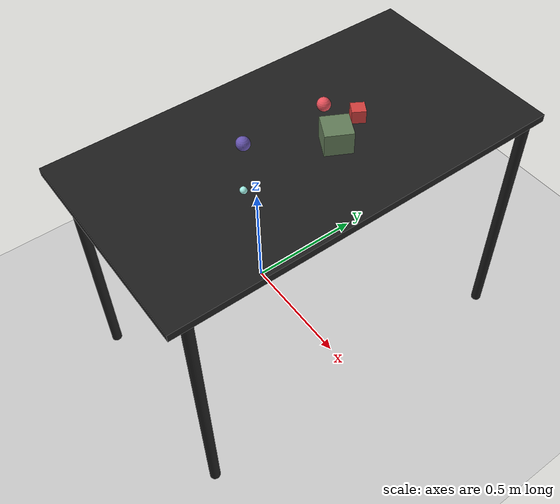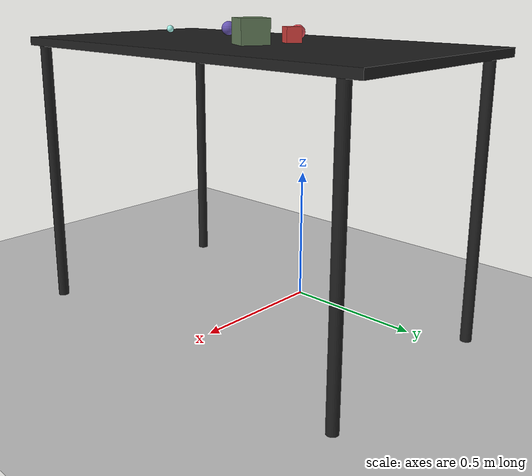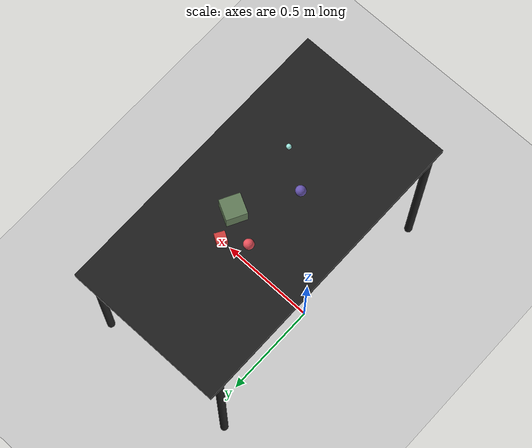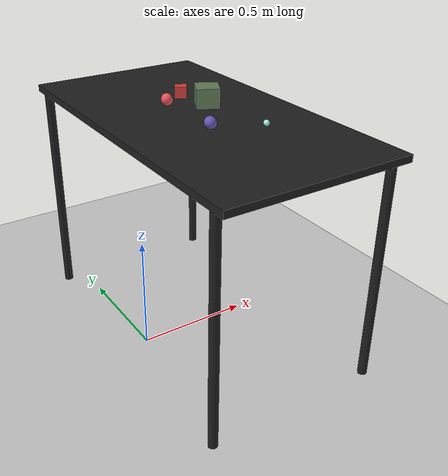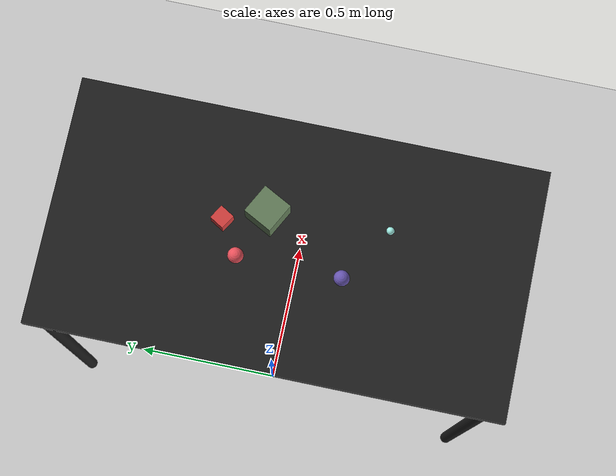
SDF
<?xml version="1.0" ?>
<sdf version="1.6">
  <world name="arm_world">
    <plugin filename="gz-sim-physics-system" name="gz::sim::systems::Physics">
      <engine>
        <filename>libgz-physics-bullet-featherstone-plugin.so</filename>
      </engine>
    </plugin>
    <plugin filename="gz-sim-user-commands-system" name="gz::sim::systems::UserCommands"/>
    <plugin filename="gz-sim-scene-broadcaster-system" name="gz::sim::systems::SceneBroadcaster"/>
    <plugin filename="gz-sim-sensors-system" name="gz::sim::systems::Sensors">
      <render_engine>ogre2</render_engine>
    </plugin>
    <gravity>0.0 0.0 -9.8</gravity>
    <scene>
      <shadows>false</shadows>
    </scene>
    <gui>
      <camera name="user_camera">
        <pose>0.75 -0.75 1.4 0 0.29 2.21</pose>
      </camera>
    </gui>
    <include>
      <uri>https://fuel.gazebosim.org/1.0/OpenRobotics/models/Sun</uri>
    </include>
    <model name="table">
      <static>true</static>
      <include>
        <uri>model://table</uri>
      </include>
      <pose>0.29 0 0 0 0 1.5708</pose>
    </model>
    <model name="ground_plane">
      <static>true</static>
      <link name="link">
        <collision name="collision">
          <geometry>
            <plane>
              <normal>0 0 1</normal>
            </plane>
          </geometry>
          <surface>
            <friction>
              <ode>
                <mu>1.0</mu>
                <mu2>1.0</mu2>
              </ode>
            </friction>
          </surface>
        </collision>
        <visual name="visual">
          <geometry>
            <plane>
              <normal>0 0 1</normal>
              <size>100 100</size>
            </plane>
          </geometry>
          <material>
            <ambient>0.8 0.8 0.8 1</ambient>
            <diffuse>0.8 0.8 0.8 1</diffuse>
            <specular>0.8 0.8 0.8 1</specular>
          </material>
        </visual>
      </link>
    </model>
    <model name="sphere_s_0">
      <pose>0.395 -0.296 1.05 0 0 1.45</pose>
      <link name="sphere_s_0_link">
        <collision name="sphere_s_0_collision">
          <geometry>
            <sphere>
              <radius>0.0125</radius>
            </sphere>
          </geometry>
        </collision>
        <visual name="sphere_s_0_visual">
          <geometry>
            <sphere>
              <radius>0.0125</radius>
            </sphere>
          </geometry>
          <material>
            <ambient>0.64 0.95 0.91 1</ambient>
            <diffuse>0.64 0.95 0.91 1</diffuse>
          </material>
        </visual>
        <velocity_decay>
          <linear>1</linear>
          <angular>1</angular>
        </velocity_decay>
      </link>
    </model>
    <model name="cube_m_1">
      <pose>0.327 0.216 1.05 0 0 2.6</pose>
      <link name="cube_m_1_link">
        <collision name="cube_m_1_collision">
          <geometry>
            <box>
              <size>0.05 0.05 0.05</size>
            </box>
          </geometry>
        </collision>
        <visual name="cube_m_1_visual">
          <geometry>
            <box>
              <size>0.05 0.05 0.05</size>
            </box>
          </geometry>
          <material>
            <ambient>0.83 0.25 0.24 1</ambient>
            <diffuse>0.83 0.25 0.24 1</diffuse>
          </material>
        </visual>
        <velocity_decay>
          <linear>1</linear>
          <angular>1</angular>
        </velocity_decay>
      </link>
    </model>
    <model name="sphere_m_2">
      <pose>0.223 0.152 1.05 0 0 5.69</pose>
      <link name="sphere_m_2_link">
        <collision name="sphere_m_2_collision">
          <geometry>
            <sphere>
              <radius>0.025</radius>
            </sphere>
          </geometry>
        </collision>
        <visual name="sphere_m_2_visual">
          <geometry>
            <sphere>
              <radius>0.025</radius>
            </sphere>
          </geometry>
          <material>
            <ambient>0.92 0.32 0.36 1</ambient>
            <diffuse>0.92 0.32 0.36 1</diffuse>
          </material>
        </visual>
        <velocity_decay>
          <linear>1</linear>
          <angular>1</angular>
        </velocity_decay>
      </link>
    </model>
    <model name="cube_l_3">
      <pose>0.376 0.084 1.05 0 0 5.8</pose>
      <link name="cube_l_3_link">
        <collision name="cube_l_3_collision">
          <geometry>
            <box>
              <size>0.1 0.1 0.1</size>
            </box>
          </geometry>
        </collision>
        <visual name="cube_l_3_visual">
          <geometry>
            <box>
              <size>0.1 0.1 0.1</size>
            </box>
          </geometry>
          <material>
            <ambient>0.39 0.49 0.35 1</ambient>
            <diffuse>0.39 0.49 0.35 1</diffuse>
          </material>
        </visual>
        <velocity_decay>
          <linear>1</linear>
          <angular>1</angular>
        </velocity_decay>
      </link>
    </model>
    <model name="sphere_m_4">
      <pose>0.22 -0.179 1.05 0 0 1.78</pose>
      <link name="sphere_m_4_link">
        <collision name="sphere_m_4_collision">
          <geometry>
            <sphere>
              <radius>0.025</radius>
            </sphere>
          </geometry>
        </collision>
        <visual name="sphere_m_4_visual">
          <geometry>
            <sphere>
              <radius>0.025</radius>
            </sphere>
          </geometry>
          <material>
            <ambient>0.41 0.34 0.7 1</ambient>
            <diffuse>0.41 0.34 0.7 1</diffuse>
          </material>
        </visual>
        <velocity_decay>
          <linear>1</linear>
          <angular>1</angular>
        </velocity_decay>
      </link>
    </model>
  </world>
</sdf>

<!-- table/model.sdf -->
<sdf version="1.5">
  <model name="table">
    <static>true</static>
    <link name="link">
      <collision name="surface">
        <pose>0 0 1.0 0 0 0</pose>
        <geometry>
          <box>
            <size>1.5 0.8 0.03</size>
          </box>
        </geometry>
        <surface>
          <friction>
            <ode>
              <mu>0.6</mu>
              <mu2>0.6</mu2>
            </ode>
          </friction>
        </surface>
      </collision>
      <visual name="surface">
        <pose>0 0 1.0 0 0 0</pose>
        <geometry>
          <box>
            <size>1.5 0.8 0.03</size>
          </box>
        </geometry>
        <material>
          <script>
            <uri>file://media/materials/scripts/gazebo.material</uri>
            <name>Gazebo/Black</name>
          </script>
        </material>
      </visual>
      <collision name="front_left_leg">
        <pose>0.68 0.38 0.5 0 0 0</pose>
        <geometry>
          <cylinder>
            <radius>0.02</radius>
            <length>1.0</length>
          </cylinder>
        </geometry>
      </collision>
      <visual name="front_left_leg">
        <pose>0.68 0.38 0.5 0 0 0</pose>
        <geometry>
          <cylinder>
            <radius>0.02</radius>
            <length>1.0</length>
          </cylinder>
        </geometry>
        <material>
          <script>
            <uri>file://media/materials/scripts/gazebo.material</uri>
            <name>Gazebo/Black</name>
          </script>
        </material>
      </visual>
      <collision name="front_right_leg">
        <pose>0.68 -0.38 0.5 0 0 0</pose>
        <geometry>
          <cylinder>
            <radius>0.02</radius>
            <length>1.0</length>
          </cylinder>
        </geometry>
      </collision>
      <visual name="front_right_leg">
        <pose>0.68 -0.38 0.5 0 0 0</pose>
        <geometry>
          <cylinder>
            <radius>0.02</radius>
            <length>1.0</length>
          </cylinder>
        </geometry>
        <material>
          <script>
            <uri>file://media/materials/scripts/gazebo.material</uri>
            <name>Gazebo/Black</name>
          </script>
        </material>
      </visual>
      <collision name="back_right_leg">
        <pose>-0.68 -0.38 0.5 0 0 0</pose>
        <geometry>
          <cylinder>
            <radius>0.02</radius>
            <length>1.0</length>
          </cylinder>
        </geometry>
      </collision>
      <visual name="back_right_leg">
        <pose>-0.68 -0.38 0.5 0 0 0</pose>
        <geometry>
          <cylinder>
            <radius>0.02</radius>
            <length>1.0</length>
          </cylinder>
        </geometry>
        <material>
          <script>
            <uri>file://media/materials/scripts/gazebo.material</uri>
            <name>Gazebo/Black</name>
          </script>
        </material>
      </visual>
      <collision name="back_left_leg">
        <pose>-0.68 0.38 0.5 0 0 0</pose>
        <geometry>
          <cylinder>
            <radius>0.02</radius>
            <length>1.0</length>
          </cylinder>
        </geometry>
      </collision>
      <visual name="back_left_leg">
        <pose>-0.68 0.38 0.5 0 0 0</pose>
        <geometry>
          <cylinder>
            <radius>0.02</radius>
            <length>1.0</length>
          </cylinder>
        </geometry>
        <material>
          <script>
            <uri>file://media/materials/scripts/gazebo.material</uri>
            <name>Gazebo/Black</name>
          </script>
        </material>
      </visual>
    </link>
  </model>
</sdf>
